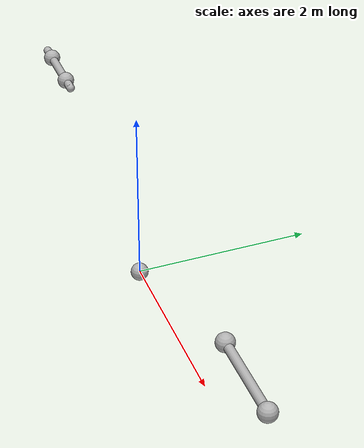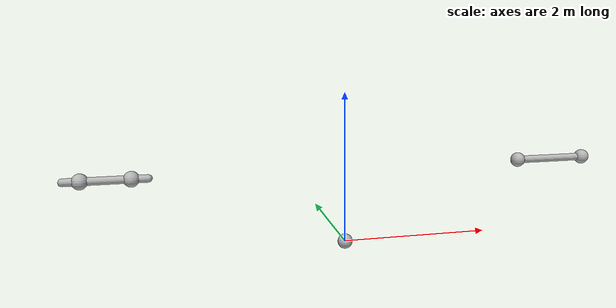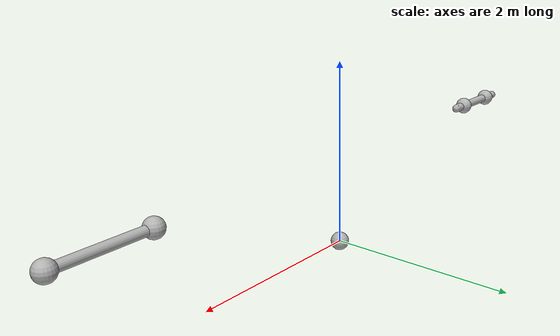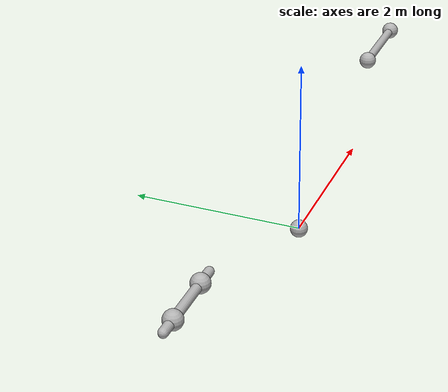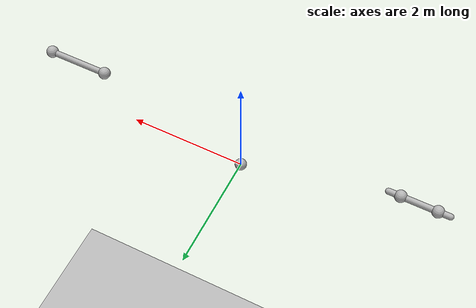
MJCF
<mujoco>
  <option gravity="0 0 -9.81" />
  <worldbody>
    <body name="object_4" pos="0 0 -10">
      <geom type="plane" size="30 30 0.1" rgba="0.7 0.7 0.7 1" />
    </body>
    <body name="object_3" pos="0 0 0">
      <geom type="sphere" size="0.1" rgba="0.7 0.7 0.7 1" />
    </body>
    <body name="object_1" pos="-3 0 1">
      <geom type="capsule" fromto="-0.5 0 0 0.5 0 0" size="0.05" density="0.2" rgba="0.7 0.7 0.7 1" />
      <geom type="sphere" pos="-0.3 0 0" size="0.1" density="1" rgba="0.7 0.7 0.7 1" />
      <geom type="sphere" pos="0.3 0 0" size="0.1" density="1" rgba="0.7 0.7 0.7 1" />
      <joint name="object_1_joint" type="hinge" axis="0 0 1" />
    </body>
    <body name="object_2" pos="3 0 1">
      <geom type="capsule" fromto="-0.5 0 0 0.5 0 0" size="0.05" density="0.2" rgba="0.7 0.7 0.7 1" />
      <geom type="sphere" pos="-0.5 0 0" size="0.1" density="1" rgba="0.7 0.7 0.7 1" />
      <geom type="sphere" pos="0.5 0 0" size="0.1" density="1" rgba="0.7 0.7 0.7 1" />
      <joint name="object_2_joint" type="hinge" axis="0 0 1" />
    </body>
  </worldbody>
</mujoco>
